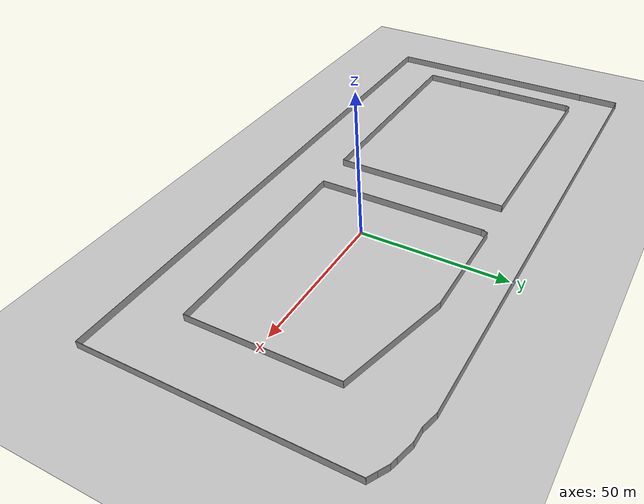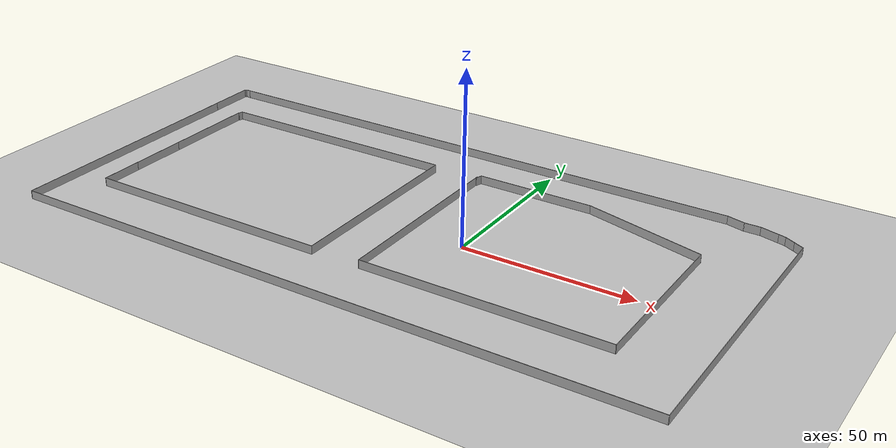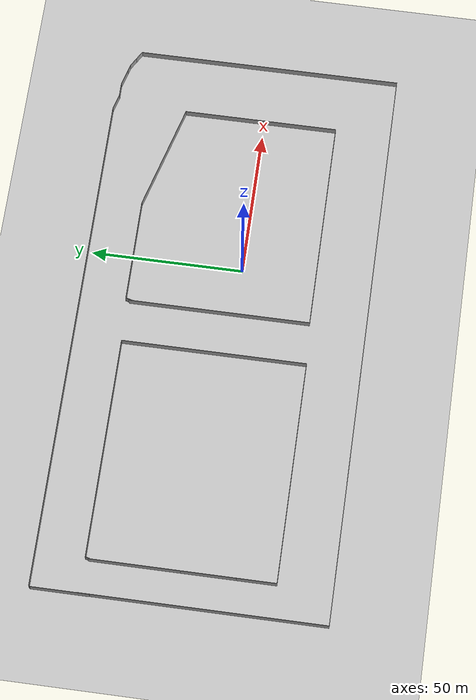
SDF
<sdf version="1.6">
 <world name="default">
  <light name="sun" type="directional">
   <pose>0 0 10 0 -0 0</pose>
   <diffuse>0.8 0.8 0.8 1</diffuse>
   <specular>0.2 0.2 0.2 1</specular>
   <attenuation>
    <range>1000</range>
    <constant>0.9</constant>
    <linear>0.01</linear>
    <quadratic>0.001</quadratic>
   </attenuation>
   <direction>-0.5 0.1 -0.9</direction>
  </light>
  <model name="ground_plane">
   <static>1</static>
   <link name="link">
    <collision name="collision">
     <geometry><plane><normal>0 0 1</normal><size>100 100</size></plane></geometry>
     <surface>
      <contact><collide_bitmask>65535</collide_bitmask></contact>
      <friction><ode><mu>100</mu><mu2>50</mu2></ode></friction>
     </surface>
    </collision>
    <visual name="visual">
     <cast_shadows>0</cast_shadows>
     <geometry><plane><normal>0 0 1</normal><size>100 100</size></plane></geometry>
     <material>
      <script><uri>file://media/materials/scripts/gazebo.material</uri><name>Gazebo/Grey</name></script>
     </material>
    </visual>
   </link>
  </model>
  <gravity>0 0 -9.8</gravity>
  <magnetic_field>6e-06 2.3e-05 -4.2e-05</magnetic_field>
  <atmosphere type="adiabatic"/>
  <physics name="default_physics" default="0" type="ode">
   <max_step_size>0.001</max_step_size>
   <real_time_factor>1</real_time_factor>
   <real_time_update_rate>1000</real_time_update_rate>
  </physics>
  <scene><ambient>0.4 0.4 0.4 1</ambient><background>0.7 0.7 0.7 1</background><shadows>1</shadows></scene>
  <audio><device>default</device></audio>
  <spherical_coordinates>
   <surface_model>EARTH_WGS84</surface_model>
   <latitude_deg>0</latitude_deg>
   <longitude_deg>0</longitude_deg>
   <elevation>0</elevation>
   <heading_deg>0</heading_deg>
  </spherical_coordinates>
  <model name="companywall">
   <pose>-20.3301 4.4062 0 0 -0 0</pose>
   <link name="Wall_0">
    <collision name="Wall_0_Collision">
     <geometry><box><size>29 0.15 2.5</size></box></geometry>
     <pose>0 0 1.25 0 -0 0</pose>
    </collision>
    <visual name="Wall_0_Visual">
     <pose>0 0 1.25 0 -0 0</pose>
     <geometry><box><size>29 0.15 2.5</size></box></geometry>
     <material>
      <script><uri>file://media/materials/scripts/gazebo.material</uri><name>Gazebo/Grey</name></script>
      <ambient>1 1 1 1</ambient>
     </material>
     <meta><layer>0</layer></meta>
    </visual>
    <pose>-84.9268 15.5781 0 0 -0 -1.5708</pose>
   </link>
   <link name="Wall_1">
    <collision name="Wall_1_Collision">
     <geometry><box><size>17.75 0.15 2.5</size></box></geometry>
     <pose>0 0 1.25 0 -0 0</pose>
    </collision>
    <visual name="Wall_1_Visual">
     <pose>0 0 1.25 0 -0 0</pose>
     <geometry><box><size>17.75 0.15 2.5</size></box></geometry>
     <material>
      <script><uri>file://media/materials/scripts/gazebo.material</uri><name>Gazebo/Grey</name></script>
      <ambient>1 1 1 1</ambient>
     </material>
     <meta><layer>0</layer></meta>
    </visual>
    <pose>-84.9268 -7.64687 0 0 -0 -1.5708</pose>
   </link>
   <link name="Wall_10">
    <collision name="Wall_10_Collision">
     <geometry><box><size>51 0.15 2.5</size></box></geometry>
     <pose>0 0 1.25 0 -0 0</pose>
    </collision>
    <visual name="Wall_10_Visual">
     <pose>0 0 1.25 0 -0 0</pose>
     <geometry><box><size>51 0.15 2.5</size></box></geometry>
     <material>
      <script><uri>file://media/materials/scripts/gazebo.material</uri><name>Gazebo/Grey</name></script>
      <ambient>1 1 1 1</ambient>
     </material>
     <meta><layer>0</layer></meta>
    </visual>
    <pose>75.708 -3.11663 0 0 -0 1.5708</pose>
   </link>
   <link name="Wall_11">
    <collision name="Wall_11_Collision">
     <geometry><box><size>37.5 0.15 2.5</size></box></geometry>
     <pose>0 0 1.25 0 -0 0</pose>
    </collision>
    <visual name="Wall_11_Visual">
     <pose>0 0 1.25 0 -0 0</pose>
     <geometry><box><size>37.5 0.15 2.5</size></box></geometry>
     <material>
      <script><uri>file://media/materials/scripts/gazebo.material</uri><name>Gazebo/Grey</name></script>
      <ambient>1 1 1 1</ambient>
     </material>
     <meta><layer>0</layer></meta>
    </visual>
    <pose>57.6694 27.1418 0 0 -0 2.87979</pose>
   </link>
   <link name="Wall_12">
    <collision name="Wall_12_Collision">
     <geometry><box><size>35 0.15 2.5</size></box></geometry>
     <pose>0 0 1.25 0 -0 0</pose>
    </collision>
    <visual name="Wall_12_Visual">
     <pose>0 0 1.25 0 -0 0</pose>
     <geometry><box><size>35 0.15 2.5</size></box></geometry>
     <material>
      <script><uri>file://media/materials/scripts/gazebo.material</uri><name>Gazebo/Grey</name></script>
      <ambient>1 1 1 1</ambient>
     </material>
     <meta><layer>0</layer></meta>
    </visual>
    <pose>22.2057 31.9753 0 0 -0 3.14159</pose>
   </link>
   <link name="Wall_13">
    <collision name="Wall_13_Collision">
     <geometry><box><size>2.25 0.15 2.5</size></box></geometry>
     <pose>0 0 1.25 0 -0 0</pose>
    </collision>
    <visual name="Wall_13_Visual">
     <pose>0 0 1.25 0 -0 0</pose>
     <geometry><box><size>2.25 0.15 2.5</size></box></geometry>
     <material>
      <script><uri>file://media/materials/scripts/gazebo.material</uri><name>Gazebo/Grey</name></script>
      <ambient>1 1 1 1</ambient>
     </material>
     <meta><layer>0</layer></meta>
    </visual>
    <pose>4.50894 30.961 0 0 -0 -1.8326</pose>
   </link>
   <link name="Wall_15">
    <collision name="Wall_15_Collision">
     <geometry><box><size>79.25 0.15 2.5</size></box></geometry>
     <pose>0 0 1.25 0 -0 0</pose>
    </collision>
    <visual name="Wall_15_Visual">
     <pose>0 0 1.25 0 -0 0</pose>
     <geometry><box><size>79.25 0.15 2.5</size></box></geometry>
     <material>
      <script><uri>file://media/materials/scripts/gazebo.material</uri><name>Gazebo/Grey</name></script>
      <ambient>1 1 1 1</ambient>
     </material>
     <meta><layer>0</layer></meta>
    </visual>
    <pose>-96.2655 -7.44183 0 0 -0 -1.5708</pose>
   </link>
   <link name="Wall_16">
    <collision name="Wall_16_Collision">
     <geometry><box><size>192.75 0.15 2.5</size></box></geometry>
     <pose>0 0 1.25 0 -0 0</pose>
    </collision>
    <visual name="Wall_16_Visual">
     <pose>0 0 1.25 0 -0 0</pose>
     <geometry><box><size>192.75 0.15 2.5</size></box></geometry>
     <material>
      <script><uri>file://media/materials/scripts/gazebo.material</uri><name>Gazebo/Grey</name></script>
      <ambient>1 1 1 1</ambient>
     </material>
     <meta><layer>0</layer></meta>
    </visual>
    <pose>0.03454 -46.9918 0 0 -0 0</pose>
   </link>
   <link name="Wall_17">
    <collision name="Wall_17_Collision">
     <geometry><box><size>87.5 0.15 2.5</size></box></geometry>
     <pose>0 0 1.25 0 -0 0</pose>
    </collision>
    <visual name="Wall_17_Visual">
     <pose>0 0 1.25 0 -0 0</pose>
     <geometry><box><size>87.5 0.15 2.5</size></box></geometry>
     <material>
      <script><uri>file://media/materials/scripts/gazebo.material</uri><name>Gazebo/Grey</name></script>
      <ambient>1 1 1 1</ambient>
     </material>
     <meta><layer>0</layer></meta>
    </visual>
    <pose>96.3345 -3.31683 0 0 -0 1.5708</pose>
   </link>
   <link name="Wall_18">
    <collision name="Wall_18_Collision">
     <geometry><box><size>3.25 0.15 2.5</size></box></geometry>
     <pose>0 0 1.25 0 -0 0</pose>
    </collision>
    <visual name="Wall_18_Visual">
     <pose>0 0 1.25 0 -0 0</pose>
     <geometry><box><size>3.25 0.15 2.5</size></box></geometry>
     <material>
      <script><uri>file://media/materials/scripts/gazebo.material</uri><name>Gazebo/Grey</name></script>
      <ambient>1 1 1 1</ambient>
     </material>
     <meta><layer>0</layer></meta>
    </visual>
    <pose>94.9922 41.1332 0 0 -0 2.61799</pose>
   </link>
   <link name="Wall_19">
    <collision name="Wall_19_Collision">
     <geometry><box><size>3.5 0.15 2.5</size></box></geometry>
     <pose>0 0 1.25 0 -0 0</pose>
    </collision>
    <visual name="Wall_19_Visual">
     <pose>0 0 1.25 0 -0 0</pose>
     <geometry><box><size>3.5 0.15 2.5</size></box></geometry>
     <material>
      <script><uri>file://media/materials/scripts/gazebo.material</uri><name>Gazebo/Grey</name></script>
      <ambient>1 1 1 1</ambient>
     </material>
     <meta><layer>0</layer></meta>
    </visual>
    <pose>92.1993 42.7457 0 0 -0 2.61799</pose>
   </link>
   <link name="Wall_2">
    <collision name="Wall_2_Collision">
     <geometry><box><size>13 0.15 2.5</size></box></geometry>
     <pose>0 0 1.25 0 -0 0</pose>
    </collision>
    <visual name="Wall_2_Visual">
     <pose>0 0 1.25 0 -0 0</pose>
     <geometry><box><size>13 0.15 2.5</size></box></geometry>
     <material>
      <script><uri>file://media/materials/scripts/gazebo.material</uri><name>Gazebo/Grey</name></script>
      <ambient>1 1 1 1</ambient>
     </material>
     <meta><layer>0</layer></meta>
    </visual>
    <pose>-84.9268 -22.8719 0 0 -0 -1.5708</pose>
   </link>
   <link name="Wall_20">
    <collision name="Wall_20_Collision">
     <geometry><box><size>2.25 0.15 2.5</size></box></geometry>
     <pose>0 0 1.25 0 -0 0</pose>
    </collision>
    <visual name="Wall_20_Visual">
     <pose>0 0 1.25 0 -0 0</pose>
     <geometry><box><size>2.25 0.15 2.5</size></box></geometry>
     <material>
      <script><uri>file://media/materials/scripts/gazebo.material</uri><name>Gazebo/Grey</name></script>
      <ambient>1 1 1 1</ambient>
     </material>
     <meta><layer>0</layer></meta>
    </visual>
    <pose>89.7345 43.8549 0 0 -0 2.87979</pose>
   </link>
   <link name="Wall_21">
    <collision name="Wall_21_Collision">
     <geometry><box><size>5.75 0.15 2.5</size></box></geometry>
     <pose>0 0 1.25 0 -0 0</pose>
    </collision>
    <visual name="Wall_21_Visual">
     <pose>0 0 1.25 0 -0 0</pose>
     <geometry><box><size>5.75 0.15 2.5</size></box></geometry>
     <material>
      <script><uri>file://media/materials/scripts/gazebo.material</uri><name>Gazebo/Grey</name></script>
      <ambient>1 1 1 1</ambient>
     </material>
     <meta><layer>0</layer></meta>
    </visual>
    <pose>86.0156 44.8514 0 0 -0 2.87979</pose>
   </link>
   <link name="Wall_22">
    <collision name="Wall_22_Collision">
     <geometry><box><size>4.75 0.15 2.5</size></box></geometry>
     <pose>0 0 1.25 0 -0 0</pose>
    </collision>
    <visual name="Wall_22_Visual">
     <pose>0 0 1.25 0 -0 0</pose>
     <geometry><box><size>4.75 0.15 2.5</size></box></geometry>
     <material>
      <script><uri>file://media/materials/scripts/gazebo.material</uri><name>Gazebo/Grey</name></script>
      <ambient>1 1 1 1</ambient>
     </material>
     <meta><layer>0</layer></meta>
    </visual>
    <pose>81.011 45.5761 0 0 -0 3.14159</pose>
   </link>
   <link name="Wall_23">
    <collision name="Wall_23_Collision">
     <geometry><box><size>5.5 0.15 2.5</size></box></geometry>
     <pose>0 0 1.25 0 -0 0</pose>
    </collision>
    <visual name="Wall_23_Visual">
     <pose>0 0 1.25 0 -0 0</pose>
     <geometry><box><size>5.5 0.15 2.5</size></box></geometry>
     <material>
      <script><uri>file://media/materials/scripts/gazebo.material</uri><name>Gazebo/Grey</name></script>
      <ambient>1 1 1 1</ambient>
     </material>
     <meta><layer>0</layer></meta>
    </visual>
    <pose>76.1272 46.2684 0 0 -0 2.87979</pose>
   </link>
   <link name="Wall_24">
    <collision name="Wall_24_Collision">
     <geometry><box><size>168.25 0.15 2.5</size></box></geometry>
     <pose>0 0 1.25 0 -0 0</pose>
    </collision>
    <visual name="Wall_24_Visual">
     <pose>0 0 1.25 0 -0 0</pose>
     <geometry><box><size>168.25 0.15 2.5</size></box></geometry>
     <material>
      <script><uri>file://media/materials/scripts/gazebo.material</uri><name>Gazebo/Grey</name></script>
      <ambient>1 1 1 1</ambient>
     </material>
     <meta><layer>0</layer></meta>
    </visual>
    <pose>-10.5067 46.9608 0 0 -0 3.14159</pose>
   </link>
   <link name="Wall_25">
    <collision name="Wall_25_Collision">
     <geometry><box><size>1.5 0.15 2.5</size></box></geometry>
     <pose>0 0 1.25 0 -0 0</pose>
    </collision>
    <visual name="Wall_25_Visual">
     <pose>0 0 1.25 0 -0 0</pose>
     <geometry><box><size>1.5 0.15 2.5</size></box></geometry>
     <material>
      <script><uri>file://media/materials/scripts/gazebo.material</uri><name>Gazebo/Grey</name></script>
      <ambient>1 1 1 1</ambient>
     </material>
     <meta><layer>0</layer></meta>
    </visual>
    <pose>-95.2317 46.9608 0 0 -0 3.14159</pose>
   </link>
   <link name="Wall_26">
    <collision name="Wall_26_Collision">
     <geometry><box><size>0.75 0.15 2.5</size></box></geometry>
     <pose>0 0 1.25 0 -0 0</pose>
    </collision>
    <visual name="Wall_26_Visual">
     <pose>0 0 1.25 0 -0 0</pose>
     <geometry><box><size>0.75 0.15 2.5</size></box></geometry>
     <material>
      <script><uri>file://media/materials/scripts/gazebo.material</uri><name>Gazebo/Grey</name></script>
      <ambient>1 1 1 1</ambient>
     </material>
     <meta><layer>0</layer></meta>
    </visual>
    <pose>-96.1188 46.7486 0 0 -0 -2.35619</pose>
   </link>
   <link name="Wall_27">
    <collision name="Wall_27_Collision">
     <geometry><box><size>18.75 0.15 2.5</size></box></geometry>
     <pose>0 0 1.25 0 -0 0</pose>
    </collision>
    <visual name="Wall_27_Visual">
     <pose>0 0 1.25 0 -0 0</pose>
     <geometry><box><size>18.75 0.15 2.5</size></box></geometry>
     <material>
      <script><uri>file://media/materials/scripts/gazebo.material</uri><name>Gazebo/Grey</name></script>
      <ambient>1 1 1 1</ambient>
     </material>
     <meta><layer>0</layer></meta>
    </visual>
    <pose>-96.3309 37.2365 0 0 -0 -1.5708</pose>
   </link>
   <link name="Wall_3">
    <collision name="Wall_3_Collision">
     <geometry><box><size>74.75 0.15 2.5</size></box></geometry>
     <pose>0 0 1.25 0 -0 0</pose>
    </collision>
    <visual name="Wall_3_Visual">
     <pose>0 0 1.25 0 -0 0</pose>
     <geometry><box><size>74.75 0.15 2.5</size></box></geometry>
     <material>
      <script><uri>file://media/materials/scripts/gazebo.material</uri><name>Gazebo/Grey</name></script>
      <ambient>1 1 1 1</ambient>
     </material>
     <meta><layer>0</layer></meta>
    </visual>
    <pose>-47.6268 -29.2969 0 0 -0 0</pose>
   </link>
   <link name="Wall_4">
    <collision name="Wall_4_Collision">
     <geometry><box><size>60.5 0.15 2.5</size></box></geometry>
     <pose>0 0 1.25 0 -0 0</pose>
    </collision>
    <visual name="Wall_4_Visual">
     <pose>0 0 1.25 0 -0 0</pose>
     <geometry><box><size>60.5 0.15 2.5</size></box></geometry>
     <material>
      <script><uri>file://media/materials/scripts/gazebo.material</uri><name>Gazebo/Grey</name></script>
      <ambient>1 1 1 1</ambient>
     </material>
     <meta><layer>0</layer></meta>
    </visual>
    <pose>-10.3268 0.878135 0 0 -0 1.5708</pose>
   </link>
   <link name="Wall_5">
    <collision name="Wall_5_Collision">
     <geometry><box><size>74.25 0.15 2.5</size></box></geometry>
     <pose>0 0 1.25 0 -0 0</pose>
    </collision>
    <visual name="Wall_5_Visual">
     <pose>0 0 1.25 0 -0 0</pose>
     <geometry><box><size>74.25 0.15 2.5</size></box></geometry>
     <material>
      <script><uri>file://media/materials/scripts/gazebo.material</uri><name>Gazebo/Grey</name></script>
      <ambient>1 1 1 1</ambient>
     </material>
     <meta><layer>0</layer></meta>
    </visual>
    <pose>-47.3768 31.0531 0 0 -0 3.14159</pose>
   </link>
   <link name="Wall_6">
    <collision name="Wall_6_Collision">
     <geometry><box><size>1.5 0.15 2.5</size></box></geometry>
     <pose>0 0 1.25 0 -0 0</pose>
    </collision>
    <visual name="Wall_6_Visual">
     <pose>0 0 1.25 0 -0 0</pose>
     <geometry><box><size>1.5 0.15 2.5</size></box></geometry>
     <material>
      <script><uri>file://media/materials/scripts/gazebo.material</uri><name>Gazebo/Grey</name></script>
      <ambient>1 1 1 1</ambient>
     </material>
     <meta><layer>0</layer></meta>
    </visual>
    <pose>-84.6015 30.4011 0 0 -0 -1.8326</pose>
   </link>
   <link name="Wall_8">
    <collision name="Wall_8_Collision">
     <geometry><box><size>59.5 0.15 2.5</size></box></geometry>
     <pose>0 0 1.25 0 -0 0</pose>
    </collision>
    <visual name="Wall_8_Visual">
     <pose>0 0 1.25 0 -0 0</pose>
     <geometry><box><size>59.5 0.15 2.5</size></box></geometry>
     <material>
      <script><uri>file://media/materials/scripts/gazebo.material</uri><name>Gazebo/Grey</name></script>
      <ambient>1 1 1 1</ambient>
     </material>
     <meta><layer>0</layer></meta>
    </visual>
    <pose>4.10803 1.13337 0 0 -0 -1.5708</pose>
   </link>
   <link name="Wall_9">
    <collision name="Wall_9_Collision">
     <geometry><box><size>71.75 0.15 2.5</size></box></geometry>
     <pose>0 0 1.25 0 -0 0</pose>
    </collision>
    <visual name="Wall_9_Visual">
     <pose>0 0 1.25 0 -0 0</pose>
     <geometry><box><size>71.75 0.15 2.5</size></box></geometry>
     <material>
      <script><uri>file://media/materials/scripts/gazebo.material</uri><name>Gazebo/Grey</name></script>
      <ambient>1 1 1 1</ambient>
     </material>
     <meta><layer>0</layer></meta>
    </visual>
    <pose>39.908 -28.5416 0 0 -0 0</pose>
   </link>
   <static>1</static>
  </model>
 </world>
</sdf>
